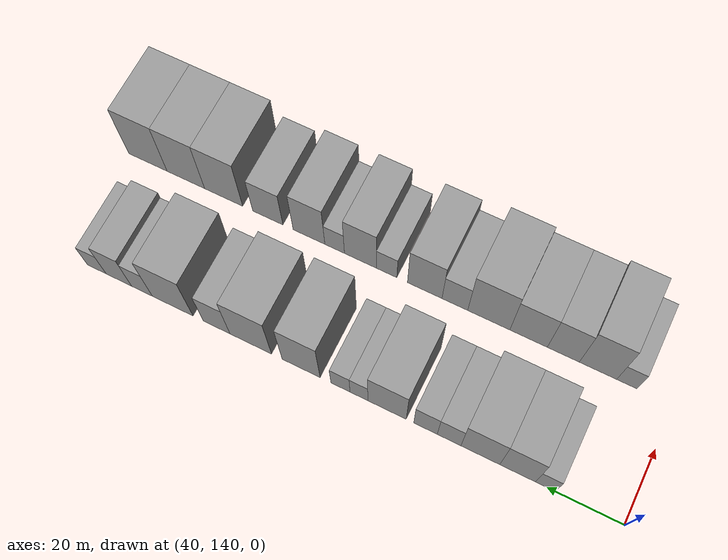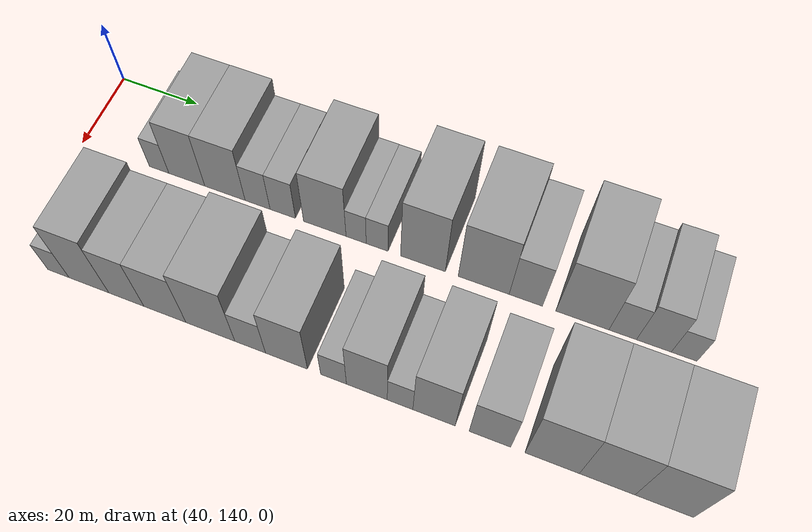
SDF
<sdf version="1.6">
 <world name="default">
  <model name="building_49">
   <static>1</static>
   <pose>50.0000 160.3709 0 0.000000 0.000000 0.000000</pose>
   <link name="link">
    <pose>0 0 6.00 0 0 0</pose>
    <collision name="collision"><geometry><box><size>20.0000 5.1000 12.0000</size></box></geometry></collision>
    <visual name="visual">
     <cast_shadows>0</cast_shadows>
     <geometry><box><size>20.0000 5.1000 12.0000</size></box></geometry>
     <material>
      <script>
       <uri>model://grey_wall/materials/scripts</uri>
       <uri>model://grey_wall/materials/textures</uri>
       <name>vrc/grey_wall</name>
      </script>
     </material>
    </visual>
   </link>
  </model>
  <model name="building_50">
   <static>1</static>
   <pose>50.0000 167.5924 0 0.000000 0.000000 0.000000</pose>
   <link name="link">
    <pose>0 0 10.50 0 0 0</pose>
    <collision name="collision"><geometry><box><size>20.0000 9.3429 21.0000</size></box></geometry></collision>
    <visual name="visual">
     <cast_shadows>0</cast_shadows>
     <geometry><box><size>20.0000 9.3429 21.0000</size></box></geometry>
     <material>
      <script>
       <uri>model://grey_wall/materials/scripts</uri>
       <uri>model://grey_wall/materials/textures</uri>
       <name>vrc/grey_wall</name>
      </script>
     </material>
    </visual>
   </link>
  </model>
  <model name="building_51">
   <static>1</static>
   <pose>50.0000 177.4050 0 0.000000 0.000000 0.000000</pose>
   <link name="link">
    <pose>0 0 10.50 0 0 0</pose>
    <collision name="collision"><geometry><box><size>20.0000 10.2823 21.0000</size></box></geometry></collision>
    <visual name="visual">
     <cast_shadows>0</cast_shadows>
     <geometry><box><size>20.0000 10.2823 21.0000</size></box></geometry>
     <material>
      <script>
       <uri>model://grey_wall/materials/scripts</uri>
       <uri>model://grey_wall/materials/textures</uri>
       <name>vrc/grey_wall</name>
      </script>
     </material>
    </visual>
   </link>
  </model>
  <model name="building_52">
   <static>1</static>
   <pose>50.0000 185.6972 0 0.000000 0.000000 0.000000</pose>
   <link name="link">
    <pose>0 0 7.50 0 0 0</pose>
    <collision name="collision"><geometry><box><size>20.0000 6.3021 15.0000</size></box></geometry></collision>
    <visual name="visual">
     <cast_shadows>0</cast_shadows>
     <geometry><box><size>20.0000 6.3021 15.0000</size></box></geometry>
     <material>
      <script>
       <uri>model://grey_wall/materials/scripts</uri>
       <uri>model://grey_wall/materials/textures</uri>
       <name>vrc/grey_wall</name>
      </script>
     </material>
    </visual>
   </link>
  </model>
  <model name="building_53">
   <static>1</static>
   <pose>50.0000 192.0240 0 0.000000 0.000000 0.000000</pose>
   <link name="link">
    <pose>0 0 7.50 0 0 0</pose>
    <collision name="collision"><geometry><box><size>20.0000 6.3515 15.0000</size></box></geometry></collision>
    <visual name="visual">
     <cast_shadows>0</cast_shadows>
     <geometry><box><size>20.0000 6.3515 15.0000</size></box></geometry>
     <material>
      <script>
       <uri>model://grey_wall/materials/scripts</uri>
       <uri>model://grey_wall/materials/textures</uri>
       <name>vrc/grey_wall</name>
      </script>
     </material>
    </visual>
   </link>
  </model>
  <model name="building_54">
   <static>1</static>
   <pose>50.0000 202.4204 0 0.000000 0.000000 0.000000</pose>
   <link name="link">
    <pose>0 0 10.50 0 0 0</pose>
    <collision name="collision"><geometry><box><size>20.0000 10.4414 21.0000</size></box></geometry></collision>
    <visual name="visual">
     <cast_shadows>0</cast_shadows>
     <geometry><box><size>20.0000 10.4414 21.0000</size></box></geometry>
     <material>
      <script>
       <uri>model://grey_wall/materials/scripts</uri>
       <uri>model://grey_wall/materials/textures</uri>
       <name>vrc/grey_wall</name>
      </script>
     </material>
    </visual>
   </link>
  </model>
  <model name="building_55">
   <static>1</static>
   <pose>50.0000 210.0939 0 0.000000 0.000000 0.000000</pose>
   <link name="link">
    <pose>0 0 6.00 0 0 0</pose>
    <collision name="collision"><geometry><box><size>20.0000 4.9056 12.0000</size></box></geometry></collision>
    <visual name="visual">
     <cast_shadows>0</cast_shadows>
     <geometry><box><size>20.0000 4.9056 12.0000</size></box></geometry>
     <material>
      <script>
       <uri>model://grey_wall/materials/scripts</uri>
       <uri>model://grey_wall/materials/textures</uri>
       <name>vrc/grey_wall</name>
      </script>
     </material>
    </visual>
   </link>
  </model>
  <model name="building_56">
   <static>1</static>
   <pose>50.0000 215.1791 0 0.000000 0.000000 0.000000</pose>
   <link name="link">
    <pose>0 0 6.00 0 0 0</pose>
    <collision name="collision"><geometry><box><size>20.0000 5.2647 12.0000</size></box></geometry></collision>
    <visual name="visual">
     <cast_shadows>0</cast_shadows>
     <geometry><box><size>20.0000 5.2647 12.0000</size></box></geometry>
     <material>
      <script>
       <uri>model://grey_wall/materials/scripts</uri>
       <uri>model://grey_wall/materials/textures</uri>
       <name>vrc/grey_wall</name>
      </script>
     </material>
    </visual>
   </link>
  </model>
  <model name="building_57">
   <static>1</static>
   <pose>50.0000 226.1138 0 0.000000 0.000000 0.000000</pose>
   <link name="link">
    <pose>0 0 12.00 0 0 0</pose>
    <collision name="collision"><geometry><box><size>20.0000 10.6047 24.0000</size></box></geometry></collision>
    <visual name="visual">
     <cast_shadows>0</cast_shadows>
     <geometry><box><size>20.0000 10.6047 24.0000</size></box></geometry>
     <material>
      <script>
       <uri>model://grey_wall/materials/scripts</uri>
       <uri>model://grey_wall/materials/textures</uri>
       <name>vrc/grey_wall</name>
      </script>
     </material>
    </visual>
   </link>
  </model>
  <model name="building_58">
   <static>1</static>
   <pose>50.0000 240.3249 0 0.000000 0.000000 0.000000</pose>
   <link name="link">
    <pose>0 0 12.00 0 0 0</pose>
    <collision name="collision"><geometry><box><size>20.0000 11.8175 24.0000</size></box></geometry></collision>
    <visual name="visual">
     <cast_shadows>0</cast_shadows>
     <geometry><box><size>20.0000 11.8175 24.0000</size></box></geometry>
     <material>
      <script>
       <uri>model://grey_wall/materials/scripts</uri>
       <uri>model://grey_wall/materials/textures</uri>
       <name>vrc/grey_wall</name>
      </script>
     </material>
    </visual>
   </link>
  </model>
  <model name="building_59">
   <static>1</static>
   <pose>50.0000 250.0452 0 0.000000 0.000000 0.000000</pose>
   <link name="link">
    <pose>0 0 9.00 0 0 0</pose>
    <collision name="collision"><geometry><box><size>20.0000 7.6230 18.0000</size></box></geometry></collision>
    <visual name="visual">
     <cast_shadows>0</cast_shadows>
     <geometry><box><size>20.0000 7.6230 18.0000</size></box></geometry>
     <material>
      <script>
       <uri>model://grey_wall/materials/scripts</uri>
       <uri>model://grey_wall/materials/textures</uri>
       <name>vrc/grey_wall</name>
      </script>
     </material>
    </visual>
   </link>
  </model>
  <model name="building_60">
   <static>1</static>
   <pose>50.0000 262.7953 0 0.000000 0.000000 0.000000</pose>
   <link name="link">
    <pose>0 0 12.00 0 0 0</pose>
    <collision name="collision"><geometry><box><size>20.0000 11.8773 24.0000</size></box></geometry></collision>
    <visual name="visual">
     <cast_shadows>0</cast_shadows>
     <geometry><box><size>20.0000 11.8773 24.0000</size></box></geometry>
     <material>
      <script>
       <uri>model://grey_wall/materials/scripts</uri>
       <uri>model://grey_wall/materials/textures</uri>
       <name>vrc/grey_wall</name>
      </script>
     </material>
    </visual>
   </link>
  </model>
  <model name="building_61">
   <static>1</static>
   <pose>50.0000 271.7701 0 0.000000 0.000000 0.000000</pose>
   <link name="link">
    <pose>0 0 7.50 0 0 0</pose>
    <collision name="collision"><geometry><box><size>20.0000 6.0723 15.0000</size></box></geometry></collision>
    <visual name="visual">
     <cast_shadows>0</cast_shadows>
     <geometry><box><size>20.0000 6.0723 15.0000</size></box></geometry>
     <material>
      <script>
       <uri>model://grey_wall/materials/scripts</uri>
       <uri>model://grey_wall/materials/textures</uri>
       <name>vrc/grey_wall</name>
      </script>
     </material>
    </visual>
   </link>
  </model>
  <model name="building_62">
   <static>1</static>
   <pose>50.0000 278.5875 0 0.000000 0.000000 0.000000</pose>
   <link name="link">
    <pose>0 0 9.00 0 0 0</pose>
    <collision name="collision"><geometry><box><size>20.0000 7.5625 18.0000</size></box></geometry></collision>
    <visual name="visual">
     <cast_shadows>0</cast_shadows>
     <geometry><box><size>20.0000 7.5625 18.0000</size></box></geometry>
     <material>
      <script>
       <uri>model://grey_wall/materials/scripts</uri>
       <uri>model://grey_wall/materials/textures</uri>
       <name>vrc/grey_wall</name>
      </script>
     </material>
    </visual>
   </link>
  </model>
  <model name="building_63">
   <static>1</static>
   <pose>50.0000 285.1560 0 0.000000 0.000000 0.000000</pose>
   <link name="link">
    <pose>0 0 6.00 0 0 0</pose>
    <collision name="collision"><geometry><box><size>20.0000 5.5745 12.0000</size></box></geometry></collision>
    <visual name="visual">
     <cast_shadows>0</cast_shadows>
     <geometry><box><size>20.0000 5.5745 12.0000</size></box></geometry>
     <material>
      <script>
       <uri>model://grey_wall/materials/scripts</uri>
       <uri>model://grey_wall/materials/textures</uri>
       <name>vrc/grey_wall</name>
      </script>
     </material>
    </visual>
   </link>
  </model>
  <model name="building_104">
   <static>1</static>
   <pose>82.0000 152.2177 0 0.000000 0.000000 0.000000</pose>
   <link name="link">
    <pose>0 0 6.00 0 0 0</pose>
    <collision name="collision"><geometry><box><size>20.0000 5.3559 12.0000</size></box></geometry></collision>
    <visual name="visual">
     <cast_shadows>0</cast_shadows>
     <geometry><box><size>20.0000 5.3559 12.0000</size></box></geometry>
     <material>
      <script>
       <uri>model://grey_wall/materials/scripts</uri>
       <uri>model://grey_wall/materials/textures</uri>
       <name>vrc/grey_wall</name>
      </script>
     </material>
    </visual>
   </link>
  </model>
  <model name="building_105">
   <static>1</static>
   <pose>82.0000 159.8796 0 0.000000 0.000000 0.000000</pose>
   <link name="link">
    <pose>0 0 12.00 0 0 0</pose>
    <collision name="collision"><geometry><box><size>20.0000 9.9680 24.0000</size></box></geometry></collision>
    <visual name="visual">
     <cast_shadows>0</cast_shadows>
     <geometry><box><size>20.0000 9.9680 24.0000</size></box></geometry>
     <material>
      <script>
       <uri>model://grey_wall/materials/scripts</uri>
       <uri>model://grey_wall/materials/textures</uri>
       <name>vrc/grey_wall</name>
      </script>
     </material>
    </visual>
   </link>
  </model>
  <model name="building_106">
   <static>1</static>
   <pose>82.0000 169.1822 0 0.000000 0.000000 0.000000</pose>
   <link name="link">
    <pose>0 0 10.50 0 0 0</pose>
    <collision name="collision"><geometry><box><size>20.0000 8.6370 21.0000</size></box></geometry></collision>
    <visual name="visual">
     <cast_shadows>0</cast_shadows>
     <geometry><box><size>20.0000 8.6370 21.0000</size></box></geometry>
     <material>
      <script>
       <uri>model://grey_wall/materials/scripts</uri>
       <uri>model://grey_wall/materials/textures</uri>
       <name>vrc/grey_wall</name>
      </script>
     </material>
    </visual>
   </link>
  </model>
  <model name="building_107">
   <static>1</static>
   <pose>82.0000 178.6078 0 0.000000 0.000000 0.000000</pose>
   <link name="link">
    <pose>0 0 10.50 0 0 0</pose>
    <collision name="collision"><geometry><box><size>20.0000 10.2143 21.0000</size></box></geometry></collision>
    <visual name="visual">
     <cast_shadows>0</cast_shadows>
     <geometry><box><size>20.0000 10.2143 21.0000</size></box></geometry>
     <material>
      <script>
       <uri>model://grey_wall/materials/scripts</uri>
       <uri>model://grey_wall/materials/textures</uri>
       <name>vrc/grey_wall</name>
      </script>
     </material>
    </visual>
   </link>
  </model>
  <model name="building_108">
   <static>1</static>
   <pose>82.0000 189.5355 0 0.000000 0.000000 0.000000</pose>
   <link name="link">
    <pose>0 0 12.00 0 0 0</pose>
    <collision name="collision"><geometry><box><size>20.0000 11.6410 24.0000</size></box></geometry></collision>
    <visual name="visual">
     <cast_shadows>0</cast_shadows>
     <geometry><box><size>20.0000 11.6410 24.0000</size></box></geometry>
     <material>
      <script>
       <uri>model://grey_wall/materials/scripts</uri>
       <uri>model://grey_wall/materials/textures</uri>
       <name>vrc/grey_wall</name>
      </script>
     </material>
    </visual>
   </link>
  </model>
  <model name="building_109">
   <static>1</static>
   <pose>82.0000 198.9463 0 0.000000 0.000000 0.000000</pose>
   <link name="link">
    <pose>0 0 7.50 0 0 0</pose>
    <collision name="collision"><geometry><box><size>20.0000 7.1807 15.0000</size></box></geometry></collision>
    <visual name="visual">
     <cast_shadows>0</cast_shadows>
     <geometry><box><size>20.0000 7.1807 15.0000</size></box></geometry>
     <material>
      <script>
       <uri>model://grey_wall/materials/scripts</uri>
       <uri>model://grey_wall/materials/textures</uri>
       <name>vrc/grey_wall</name>
      </script>
     </material>
    </visual>
   </link>
  </model>
  <model name="building_110">
   <static>1</static>
   <pose>82.0000 207.3932 0 0.000000 0.000000 0.000000</pose>
   <link name="link">
    <pose>0 0 10.50 0 0 0</pose>
    <collision name="collision"><geometry><box><size>20.0000 9.7129 21.0000</size></box></geometry></collision>
    <visual name="visual">
     <cast_shadows>0</cast_shadows>
     <geometry><box><size>20.0000 9.7129 21.0000</size></box></geometry>
     <material>
      <script>
       <uri>model://grey_wall/materials/scripts</uri>
       <uri>model://grey_wall/materials/textures</uri>
       <name>vrc/grey_wall</name>
      </script>
     </material>
    </visual>
   </link>
  </model>
  <model name="building_111">
   <static>1</static>
   <pose>82.0000 218.1797 0 0.000000 0.000000 0.000000</pose>
   <link name="link">
    <pose>0 0 6.00 0 0 0</pose>
    <collision name="collision"><geometry><box><size>20.0000 5.8603 12.0000</size></box></geometry></collision>
    <visual name="visual">
     <cast_shadows>0</cast_shadows>
     <geometry><box><size>20.0000 5.8603 12.0000</size></box></geometry>
     <material>
      <script>
       <uri>model://grey_wall/materials/scripts</uri>
       <uri>model://grey_wall/materials/textures</uri>
       <name>vrc/grey_wall</name>
      </script>
     </material>
    </visual>
   </link>
  </model>
  <model name="building_112">
   <static>1</static>
   <pose>82.0000 225.6800 0 0.000000 0.000000 0.000000</pose>
   <link name="link">
    <pose>0 0 10.50 0 0 0</pose>
    <collision name="collision"><geometry><box><size>20.0000 9.1404 21.0000</size></box></geometry></collision>
    <visual name="visual">
     <cast_shadows>0</cast_shadows>
     <geometry><box><size>20.0000 9.1404 21.0000</size></box></geometry>
     <material>
      <script>
       <uri>model://grey_wall/materials/scripts</uri>
       <uri>model://grey_wall/materials/textures</uri>
       <name>vrc/grey_wall</name>
      </script>
     </material>
    </visual>
   </link>
  </model>
  <model name="building_113">
   <static>1</static>
   <pose>82.0000 233.0842 0 0.000000 0.000000 0.000000</pose>
   <link name="link">
    <pose>0 0 6.00 0 0 0</pose>
    <collision name="collision"><geometry><box><size>20.0000 5.6680 12.0000</size></box></geometry></collision>
    <visual name="visual">
     <cast_shadows>0</cast_shadows>
     <geometry><box><size>20.0000 5.6680 12.0000</size></box></geometry>
     <material>
      <script>
       <uri>model://grey_wall/materials/scripts</uri>
       <uri>model://grey_wall/materials/textures</uri>
       <name>vrc/grey_wall</name>
      </script>
     </material>
    </visual>
   </link>
  </model>
  <model name="building_114">
   <static>1</static>
   <pose>82.0000 240.5529 0 0.000000 0.000000 0.000000</pose>
   <link name="link">
    <pose>0 0 10.50 0 0 0</pose>
    <collision name="collision"><geometry><box><size>20.0000 9.2693 21.0000</size></box></geometry></collision>
    <visual name="visual">
     <cast_shadows>0</cast_shadows>
     <geometry><box><size>20.0000 9.2693 21.0000</size></box></geometry>
     <material>
      <script>
       <uri>model://grey_wall/materials/scripts</uri>
       <uri>model://grey_wall/materials/textures</uri>
       <name>vrc/grey_wall</name>
      </script>
     </material>
    </visual>
   </link>
  </model>
  <model name="building_115">
   <static>1</static>
   <pose>82.0000 252.6492 0 0.000000 0.000000 0.000000</pose>
   <link name="link">
    <pose>0 0 9.00 0 0 0</pose>
    <collision name="collision"><geometry><box><size>20.0000 8.9233 18.0000</size></box></geometry></collision>
    <visual name="visual">
     <cast_shadows>0</cast_shadows>
     <geometry><box><size>20.0000 8.9233 18.0000</size></box></geometry>
     <material>
      <script>
       <uri>model://grey_wall/materials/scripts</uri>
       <uri>model://grey_wall/materials/textures</uri>
       <name>vrc/grey_wall</name>
      </script>
     </material>
    </visual>
   </link>
  </model>
  <model name="building_116">
   <static>1</static>
   <pose>82.0000 265.8233 0 0.000000 0.000000 0.000000</pose>
   <link name="link">
    <pose>0 0 12.00 0 0 0</pose>
    <collision name="collision"><geometry><box><size>20.0000 11.4250 24.0000</size></box></geometry></collision>
    <visual name="visual">
     <cast_shadows>0</cast_shadows>
     <geometry><box><size>20.0000 11.4250 24.0000</size></box></geometry>
     <material>
      <script>
       <uri>model://grey_wall/materials/scripts</uri>
       <uri>model://grey_wall/materials/textures</uri>
       <name>vrc/grey_wall</name>
      </script>
     </material>
    </visual>
   </link>
  </model>
  <model name="building_117">
   <static>1</static>
   <pose>82.0000 277.2405 0 0.000000 0.000000 0.000000</pose>
   <link name="link">
    <pose>0 0 12.00 0 0 0</pose>
    <collision name="collision"><geometry><box><size>20.0000 11.4095 24.0000</size></box></geometry></collision>
    <visual name="visual">
     <cast_shadows>0</cast_shadows>
     <geometry><box><size>20.0000 11.4095 24.0000</size></box></geometry>
     <material>
      <script>
       <uri>model://grey_wall/materials/scripts</uri>
       <uri>model://grey_wall/materials/textures</uri>
       <name>vrc/grey_wall</name>
      </script>
     </material>
    </visual>
   </link>
  </model>
  <model name="building_118">
   <static>1</static>
   <pose>82.0000 288.8339 0 0.000000 0.000000 0.000000</pose>
   <link name="link">
    <pose>0 0 12.00 0 0 0</pose>
    <collision name="collision"><geometry><box><size>20.0000 11.7773 24.0000</size></box></geometry></collision>
    <visual name="visual">
     <cast_shadows>0</cast_shadows>
     <geometry><box><size>20.0000 11.7773 24.0000</size></box></geometry>
     <material>
      <script>
       <uri>model://grey_wall/materials/scripts</uri>
       <uri>model://grey_wall/materials/textures</uri>
       <name>vrc/grey_wall</name>
      </script>
     </material>
    </visual>
   </link>
  </model>
 </world>
</sdf>
